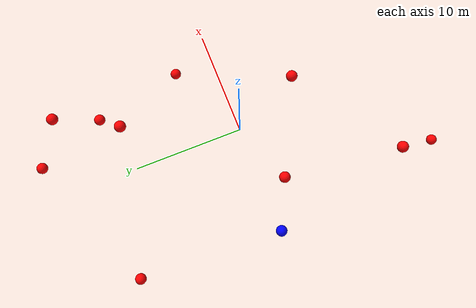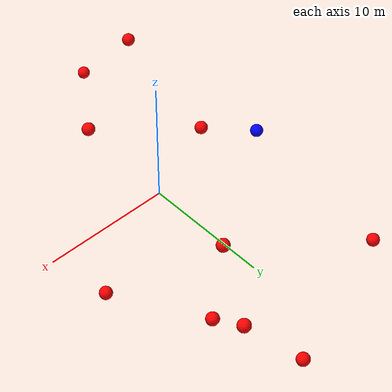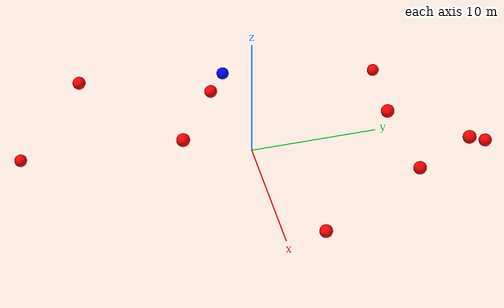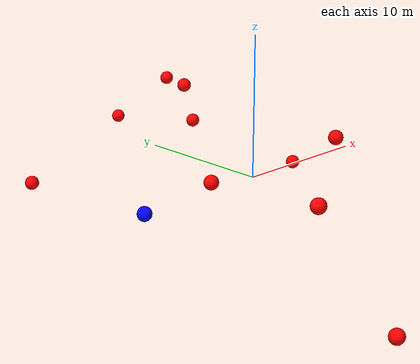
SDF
<?xml version="1.0" ?>
<sdf version="1.8">
    <world name="3d_world">
        <physics name="1ms" type="ode">
            <max_step_size>0.001</max_step_size>
            <real_time_factor>1.0</real_time_factor>
            <real_time_update_rate>1000.0</real_time_update_rate>
        </physics>
        <gravity>0 0 0</gravity>

        <plugin
            filename="gz-sim-physics-system"
            name="gz::sim::v8::systems::Physics">
        </plugin>
        <plugin
            filename="libignition-gazebo-user-commands-system.so"
            name="ignition::gazebo::systems::UserCommands">
        </plugin>
        <plugin
            filename="gz-sim-scene-broadcaster-system"
            name="gz::sim::systems::SceneBroadcaster">
        </plugin>
        <plugin
            filename="gz-sim-sensors-system"
            name="gz::sim::systems::Sensors">
            <render_engine>ogre2</render_engine>
        </plugin>

        <light type="directional" name="sun">
            <cast_shadows>true</cast_shadows>
            <pose>0 0 10 0 0 0</pose>
            <diffuse>0.8 0.8 0.8 1</diffuse>
            <specular>0.2 0.2 0.2 1</specular>
            <attenuation>
                <range>1000</range>
                <constant>0.9</constant>
                <linear>0.01</linear>
                <quadratic>0.001</quadratic>
            </attenuation>
            <direction>-0.5 0.1 -0.9</direction>
        </light>

        <!-- AGENTE -->
        <model name='agente' canonical_link='chassis'>
            <pose relative_to='world'>-10.0 0 0.0 0 0 0</pose>
            <link name='chassis'>
                <pose relative_to='__model__'>0.0 0 0.0 0 0 0</pose>
                <inertial>
                    <mass>1.14395</mass>
                    <inertia>
                        <ixx>0.095329</ixx>
                        <ixy>0</ixy>
                        <ixz>0</ixz>
                        <iyy>0.381317</iyy>
                        <iyz>0</iyz>
                        <izz>0.476646</izz>
                    </inertia>
                </inertial>
                <visual name='visual'>
                    <geometry>
                        <sphere>
                            <radius>0.5</radius>
                        </sphere>
                    </geometry>
                    <material>
                        <ambient>0.0 0.0 1.0 1</ambient>
                        <diffuse>0.0 0.0 1.0 1</diffuse>
                        <specular>0.0 0.0 1.0 1</specular>
                    </material>
                </visual>
                <collision name='collision'>
                    <geometry>
                        <sphere>
                            <radius>0.5</radius>
                        </sphere>
                    </geometry>
                </collision>
                <enable_gravity>false</enable_gravity>
            </link>

            <link name='lidar_link'>
                <pose relative_to='chassis'>0.0 0 0.1 0 0 0</pose>
                <inertial>
                    <mass>0.1</mass>
                    <inertia>
                        <ixx>0.000166667</ixx>
                        <iyy>0.000166667</iyy>
                        <izz>0.000166667</izz>
                    </inertia>
                </inertial>
                <collision name='collision'>
                    <geometry>
                        <cylinder>
                            <radius>0.05</radius>
                            <length>0.1</length>
                        </cylinder>
                    </geometry>
                </collision>
                <visual name='visual'>
                    <geometry>
                        <cylinder>
                            <radius>0.05</radius>
                            <length>0.1</length>
                        </cylinder>
                    </geometry>
                    <material>
                        <ambient>0.0 1.0 0.0 1</ambient>
                        <diffuse>0.0 1.0 0.0 1</diffuse>
                        <specular>0.0 1.0 0.0 1</specular>
                    </material>
                </visual>
                <sensor name="lidar" type="gpu_lidar">
                    <topic>scan</topic>
                    <update_rate>10</update_rate>
                    <lidar>
                        <scan>
                            <horizontal>
                                <samples>5000</samples>
                                <resolution>1</resolution>
                                <min_angle>-3.14159</min_angle>
                                <max_angle>3.14159</max_angle>
                            </horizontal>
                        </scan>
                        <range>
                            <min>0.1</min>
                            <max>10.0</max>
                            <resolution>0.01</resolution>
                        </range>
                    </lidar>
                    <visualize>true</visualize>
                    <always_on>true</always_on>
                    <update_rate>10</update_rate>
                    <pose_frame>lidar</pose_frame>
                </sensor>
                <enable_gravity>false</enable_gravity>
            </link>

            <joint name="lidar_joint" type="fixed">
                <parent>chassis</parent>
                <child>lidar_link</child>
            </joint>

            <plugin
                filename="ignition-gazebo-joint-state-publisher-system"
                name="ignition::gazebo::systems::JointStatePublisher">
            </plugin>
            <plugin
                filename="ignition-gazebo-odometry-publisher-system"
                name="ignition::gazebo::systems::OdometryPublisher">
                <dimensions>3</dimensions>
            </plugin>
            <plugin
                filename="ignition-gazebo-velocity-control-system"
                name="ignition::gazebo::systems::VelocityControl">
                <initial_linear>0.0 0 0</initial_linear>
                <initial_angular>0 0 0.0</initial_angular>
            </plugin>
            <plugin
                filename="libignition-gazebo-pose-publisher-system.so"
                name="ignition::gazebo::systems::PosePublisher">
                <topic>/agente/pose</topic>
                <frame_id>agente</frame_id>
                <update_rate>30</update_rate>
            </plugin>
        </model>

        <!-- OBSTACLE 1 -->
        <model name='obstacle_1' canonical_link='obstacle'>
            <static>false</static>
            <pose relative_to='world'>-6.88 -17.51 -3.29 0 0 0</pose>
            <link name='obstacle'>
                <pose relative_to='__model__'>0.0 0 0.0 0 0 0</pose>
                <visual name='visual'>
                    <geometry>
                        <sphere>
                            <radius>0.50</radius>
                        </sphere>
                    </geometry>
                    <material>
                        <ambient>1.0 0.0 0.0 1</ambient>
                        <diffuse>1.0 0.0 0.0 1</diffuse>
                        <specular>1.0 0.0 0.0 1</specular>
                    </material>
                </visual>
                <collision name='collision'>
                    <geometry>
                        <sphere>
                            <radius>0.50</radius>
                        </sphere>
                    </geometry>
                </collision>
                <enable_gravity>false</enable_gravity>
            </link>

            <plugin
                filename="ignition-gazebo-velocity-control-system"
                name="ignition::gazebo::systems::VelocityControl">
                <initial_linear>0.27 1.95 0.37</initial_linear>
                <initial_angular>0 0 0</initial_angular>
            </plugin>

            <plugin
                filename="ignition-gazebo-odometry-publisher-system"
                name="ignition::gazebo::systems::OdometryPublisher">
                <dimensions>3</dimensions>
            </plugin>
        </model>

        <!-- OBSTACLE 2 -->
        <model name='obstacle_2' canonical_link='obstacle'>
            <static>false</static>
            <pose relative_to='world'>5.53 11.70 0.46 0 0 0</pose>
            <link name='obstacle'>
                <pose relative_to='__model__'>0.0 0 0.0 0 0 0</pose>
                <visual name='visual'>
                    <geometry>
                        <sphere>
                            <radius>0.50</radius>
                        </sphere>
                    </geometry>
                    <material>
                        <ambient>1.0 0.0 0.0 1</ambient>
                        <diffuse>1.0 0.0 0.0 1</diffuse>
                        <specular>1.0 0.0 0.0 1</specular>
                    </material>
                </visual>
                <collision name='collision'>
                    <geometry>
                        <sphere>
                            <radius>0.50</radius>
                        </sphere>
                    </geometry>
                </collision>
                <enable_gravity>false</enable_gravity>
            </link>

            <plugin
                filename="ignition-gazebo-velocity-control-system"
                name="ignition::gazebo::systems::VelocityControl">
                <initial_linear>-1.07 -1.69 -0.07</initial_linear>
                <initial_angular>0 0 0</initial_angular>
            </plugin>

            <plugin
                filename="ignition-gazebo-odometry-publisher-system"
                name="ignition::gazebo::systems::OdometryPublisher">
                <dimensions>3</dimensions>
            </plugin>
        </model>

        <!-- OBSTACLE 3 -->
        <model name='obstacle_3' canonical_link='obstacle'>
            <static>false</static>
            <pose relative_to='world'>-5.94 -1.89 1.58 0 0 0</pose>
            <link name='obstacle'>
                <pose relative_to='__model__'>0.0 0 0.0 0 0 0</pose>
                <visual name='visual'>
                    <geometry>
                        <sphere>
                            <radius>0.50</radius>
                        </sphere>
                    </geometry>
                    <material>
                        <ambient>1.0 0.0 0.0 1</ambient>
                        <diffuse>1.0 0.0 0.0 1</diffuse>
                        <specular>1.0 0.0 0.0 1</specular>
                    </material>
                </visual>
                <collision name='collision'>
                    <geometry>
                        <sphere>
                            <radius>0.50</radius>
                        </sphere>
                    </geometry>
                </collision>
                <enable_gravity>false</enable_gravity>
            </link>

            <plugin
                filename="ignition-gazebo-velocity-control-system"
                name="ignition::gazebo::systems::VelocityControl">
                <initial_linear>1.91 0.28 -0.23</initial_linear>
                <initial_angular>0 0 0</initial_angular>
            </plugin>

            <plugin
                filename="ignition-gazebo-odometry-publisher-system"
                name="ignition::gazebo::systems::OdometryPublisher">
                <dimensions>3</dimensions>
            </plugin>
        </model>

        <!-- OBSTACLE 4 -->
        <model name='obstacle_4' canonical_link='obstacle'>
            <static>false</static>
            <pose relative_to='world'>3.22 18.00 -0.03 0 0 0</pose>
            <link name='obstacle'>
                <pose relative_to='__model__'>0.0 0 0.0 0 0 0</pose>
                <visual name='visual'>
                    <geometry>
                        <sphere>
                            <radius>0.50</radius>
                        </sphere>
                    </geometry>
                    <material>
                        <ambient>1.0 0.0 0.0 1</ambient>
                        <diffuse>1.0 0.0 0.0 1</diffuse>
                        <specular>1.0 0.0 0.0 1</specular>
                    </material>
                </visual>
                <collision name='collision'>
                    <geometry>
                        <sphere>
                            <radius>0.50</radius>
                        </sphere>
                    </geometry>
                </collision>
                <enable_gravity>false</enable_gravity>
            </link>

            <plugin
                filename="ignition-gazebo-velocity-control-system"
                name="ignition::gazebo::systems::VelocityControl">
                <initial_linear>0.35 -1.97 0.00</initial_linear>
                <initial_angular>0 0 0</initial_angular>
            </plugin>

            <plugin
                filename="ignition-gazebo-odometry-publisher-system"
                name="ignition::gazebo::systems::OdometryPublisher">
                <dimensions>3</dimensions>
            </plugin>
        </model>

        <!-- OBSTACLE 5 -->
        <model name='obstacle_5' canonical_link='obstacle'>
            <static>false</static>
            <pose relative_to='world'>5.96 15.15 3.18 0 0 0</pose>
            <link name='obstacle'>
                <pose relative_to='__model__'>0.0 0 0.0 0 0 0</pose>
                <visual name='visual'>
                    <geometry>
                        <sphere>
                            <radius>0.50</radius>
                        </sphere>
                    </geometry>
                    <material>
                        <ambient>1.0 0.0 0.0 1</ambient>
                        <diffuse>1.0 0.0 0.0 1</diffuse>
                        <specular>1.0 0.0 0.0 1</specular>
                    </material>
                </visual>
                <collision name='collision'>
                    <geometry>
                        <sphere>
                            <radius>0.50</radius>
                        </sphere>
                    </geometry>
                </collision>
                <enable_gravity>false</enable_gravity>
            </link>

            <plugin
                filename="ignition-gazebo-velocity-control-system"
                name="ignition::gazebo::systems::VelocityControl">
                <initial_linear>-0.50 -1.90 -0.40</initial_linear>
                <initial_angular>0 0 0</initial_angular>
            </plugin>

            <plugin
                filename="ignition-gazebo-odometry-publisher-system"
                name="ignition::gazebo::systems::OdometryPublisher">
                <dimensions>3</dimensions>
            </plugin>
        </model>

        <!-- OBSTACLE 6 -->
        <model name='obstacle_6' canonical_link='obstacle'>
            <static>false</static>
            <pose relative_to='world'>8.23 3.58 -1.66 0 0 0</pose>
            <link name='obstacle'>
                <pose relative_to='__model__'>0.0 0 0.0 0 0 0</pose>
                <visual name='visual'>
                    <geometry>
                        <sphere>
                            <radius>0.50</radius>
                        </sphere>
                    </geometry>
                    <material>
                        <ambient>1.0 0.0 0.0 1</ambient>
                        <diffuse>1.0 0.0 0.0 1</diffuse>
                        <specular>1.0 0.0 0.0 1</specular>
                    </material>
                </visual>
                <collision name='collision'>
                    <geometry>
                        <sphere>
                            <radius>0.50</radius>
                        </sphere>
                    </geometry>
                </collision>
                <enable_gravity>false</enable_gravity>
            </link>

            <plugin
                filename="ignition-gazebo-velocity-control-system"
                name="ignition::gazebo::systems::VelocityControl">
                <initial_linear>-0.85 -0.66 0.31</initial_linear>
                <initial_angular>0 0 0</initial_angular>
            </plugin>

            <plugin
                filename="ignition-gazebo-odometry-publisher-system"
                name="ignition::gazebo::systems::OdometryPublisher">
                <dimensions>3</dimensions>
            </plugin>
        </model>

        <!-- OBSTACLE 7 -->
        <model name='obstacle_7' canonical_link='obstacle'>
            <static>false</static>
            <pose relative_to='world'>-9.18 13.04 -1.46 0 0 0</pose>
            <link name='obstacle'>
                <pose relative_to='__model__'>0.0 0 0.0 0 0 0</pose>
                <visual name='visual'>
                    <geometry>
                        <sphere>
                            <radius>0.50</radius>
                        </sphere>
                    </geometry>
                    <material>
                        <ambient>1.0 0.0 0.0 1</ambient>
                        <diffuse>1.0 0.0 0.0 1</diffuse>
                        <specular>1.0 0.0 0.0 1</specular>
                    </material>
                </visual>
                <collision name='collision'>
                    <geometry>
                        <sphere>
                            <radius>0.50</radius>
                        </sphere>
                    </geometry>
                </collision>
                <enable_gravity>false</enable_gravity>
            </link>

            <plugin
                filename="ignition-gazebo-velocity-control-system"
                name="ignition::gazebo::systems::VelocityControl">
                <initial_linear>1.27 -1.53 0.17</initial_linear>
                <initial_angular>0 0 0</initial_angular>
            </plugin>

            <plugin
                filename="ignition-gazebo-odometry-publisher-system"
                name="ignition::gazebo::systems::OdometryPublisher">
                <dimensions>3</dimensions>
            </plugin>
        </model>

        <!-- OBSTACLE 8 -->
        <model name='obstacle_8' canonical_link='obstacle'>
            <static>false</static>
            <pose relative_to='world'>1.82 -5.64 3.75 0 0 0</pose>
            <link name='obstacle'>
                <pose relative_to='__model__'>0.0 0 0.0 0 0 0</pose>
                <visual name='visual'>
                    <geometry>
                        <sphere>
                            <radius>0.50</radius>
                        </sphere>
                    </geometry>
                    <material>
                        <ambient>1.0 0.0 0.0 1</ambient>
                        <diffuse>1.0 0.0 0.0 1</diffuse>
                        <specular>1.0 0.0 0.0 1</specular>
                    </material>
                </visual>
                <collision name='collision'>
                    <geometry>
                        <sphere>
                            <radius>0.50</radius>
                        </sphere>
                    </geometry>
                </collision>
                <enable_gravity>false</enable_gravity>
            </link>

            <plugin
                filename="ignition-gazebo-velocity-control-system"
                name="ignition::gazebo::systems::VelocityControl">
                <initial_linear>-0.94 1.47 -0.98</initial_linear>
                <initial_angular>0 0 0</initial_angular>
            </plugin>

            <plugin
                filename="ignition-gazebo-odometry-publisher-system"
                name="ignition::gazebo::systems::OdometryPublisher">
                <dimensions>3</dimensions>
            </plugin>
        </model>

        <!-- OBSTACLE 9 -->
        <model name='obstacle_9' canonical_link='obstacle'>
            <static>false</static>
            <pose relative_to='world'>2.77 9.77 4.19 0 0 0</pose>
            <link name='obstacle'>
                <pose relative_to='__model__'>0.0 0 0.0 0 0 0</pose>
                <visual name='visual'>
                    <geometry>
                        <sphere>
                            <radius>0.50</radius>
                        </sphere>
                    </geometry>
                    <material>
                        <ambient>1.0 0.0 0.0 1</ambient>
                        <diffuse>1.0 0.0 0.0 1</diffuse>
                        <specular>1.0 0.0 0.0 1</specular>
                    </material>
                </visual>
                <collision name='collision'>
                    <geometry>
                        <sphere>
                            <radius>0.50</radius>
                        </sphere>
                    </geometry>
                </collision>
                <enable_gravity>false</enable_gravity>
            </link>

            <plugin
                filename="ignition-gazebo-velocity-control-system"
                name="ignition::gazebo::systems::VelocityControl">
                <initial_linear>-0.83 -1.67 -0.72</initial_linear>
                <initial_angular>0 0 0</initial_angular>
            </plugin>

            <plugin
                filename="ignition-gazebo-odometry-publisher-system"
                name="ignition::gazebo::systems::OdometryPublisher">
                <dimensions>3</dimensions>
            </plugin>
        </model>

        <!-- OBSTACLE 10 -->
        <model name='obstacle_10' canonical_link='obstacle'>
            <static>false</static>
            <pose relative_to='world'>-7.50 -12.07 3.16 0 0 0</pose>
            <link name='obstacle'>
                <pose relative_to='__model__'>0.0 0 0.0 0 0 0</pose>
                <visual name='visual'>
                    <geometry>
                        <sphere>
                            <radius>0.50</radius>
                        </sphere>
                    </geometry>
                    <material>
                        <ambient>1.0 0.0 0.0 1</ambient>
                        <diffuse>1.0 0.0 0.0 1</diffuse>
                        <specular>1.0 0.0 0.0 1</specular>
                    </material>
                </visual>
                <collision name='collision'>
                    <geometry>
                        <sphere>
                            <radius>0.50</radius>
                        </sphere>
                    </geometry>
                </collision>
                <enable_gravity>false</enable_gravity>
            </link>

            <plugin
                filename="ignition-gazebo-velocity-control-system"
                name="ignition::gazebo::systems::VelocityControl">
                <initial_linear>1.47 1.31 -0.34</initial_linear>
                <initial_angular>0 0 0</initial_angular>
            </plugin>

            <plugin
                filename="ignition-gazebo-odometry-publisher-system"
                name="ignition::gazebo::systems::OdometryPublisher">
                <dimensions>3</dimensions>
            </plugin>
        </model>

    </world>
</sdf>
